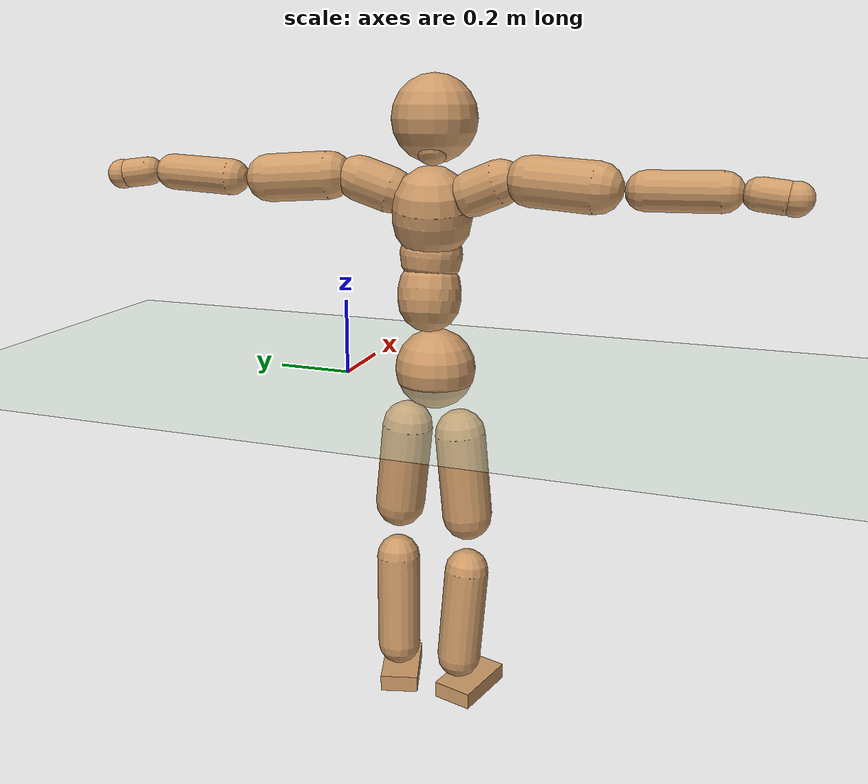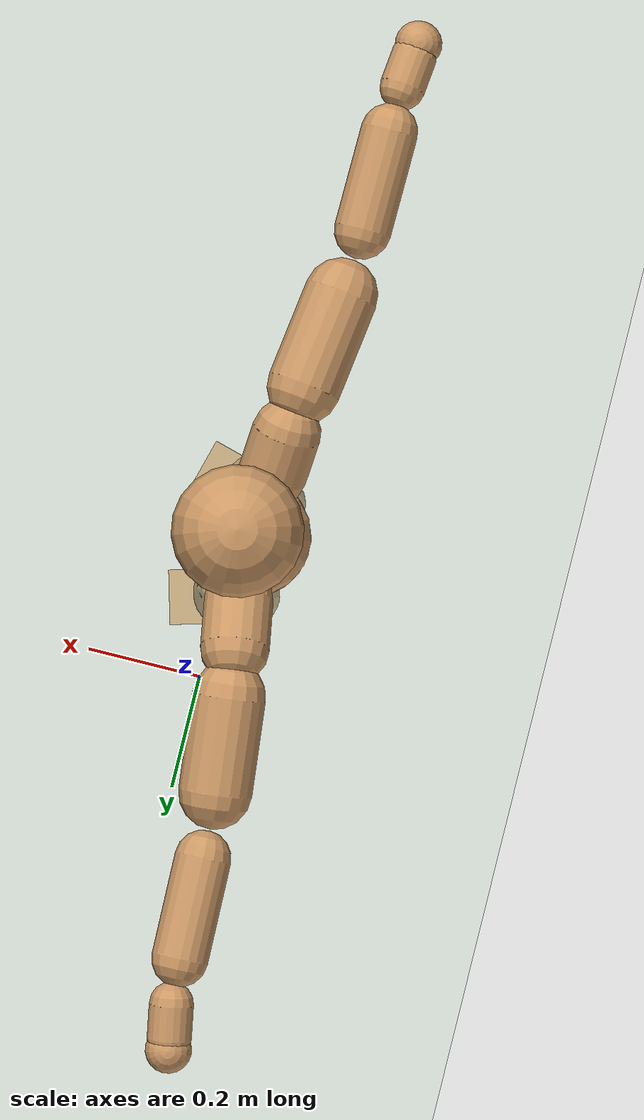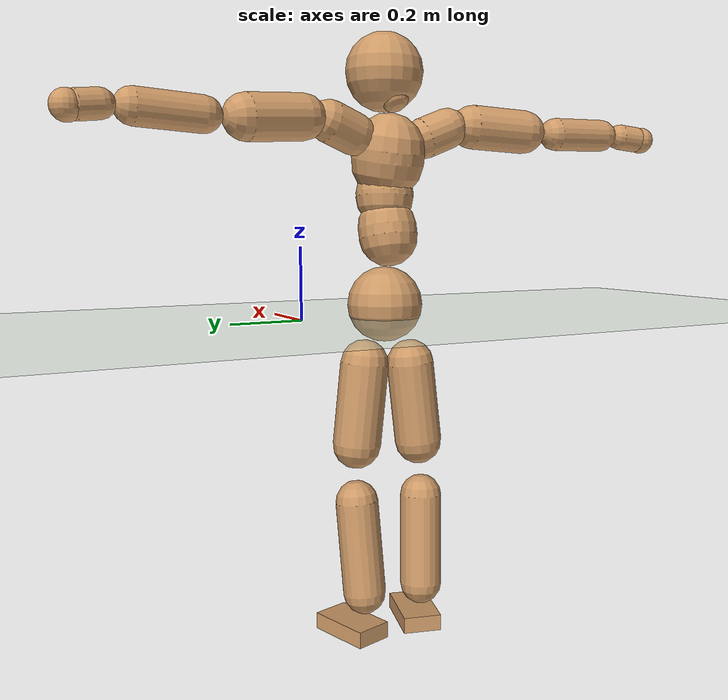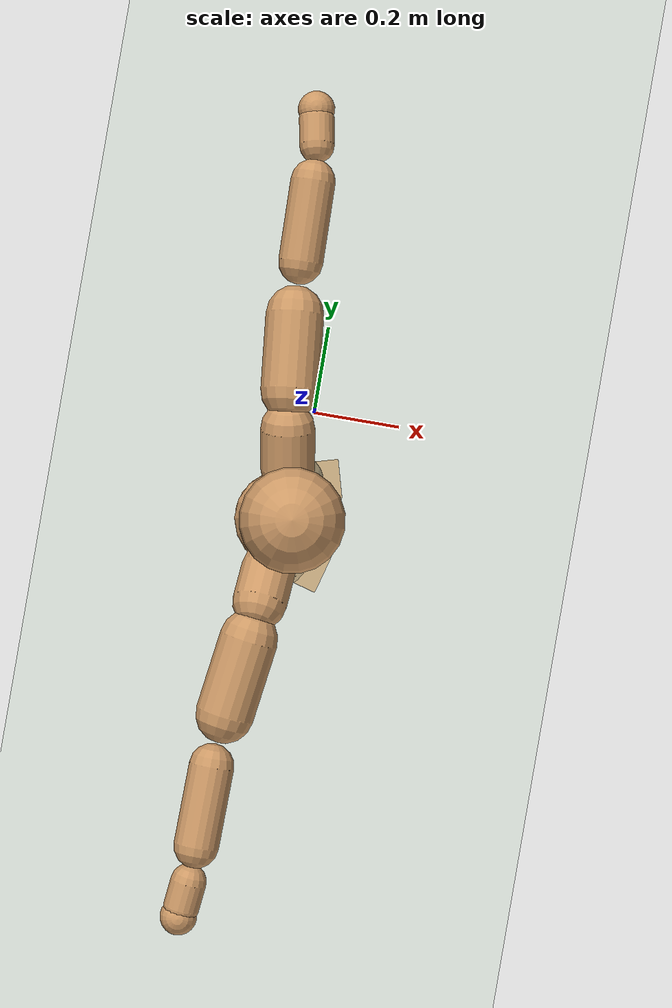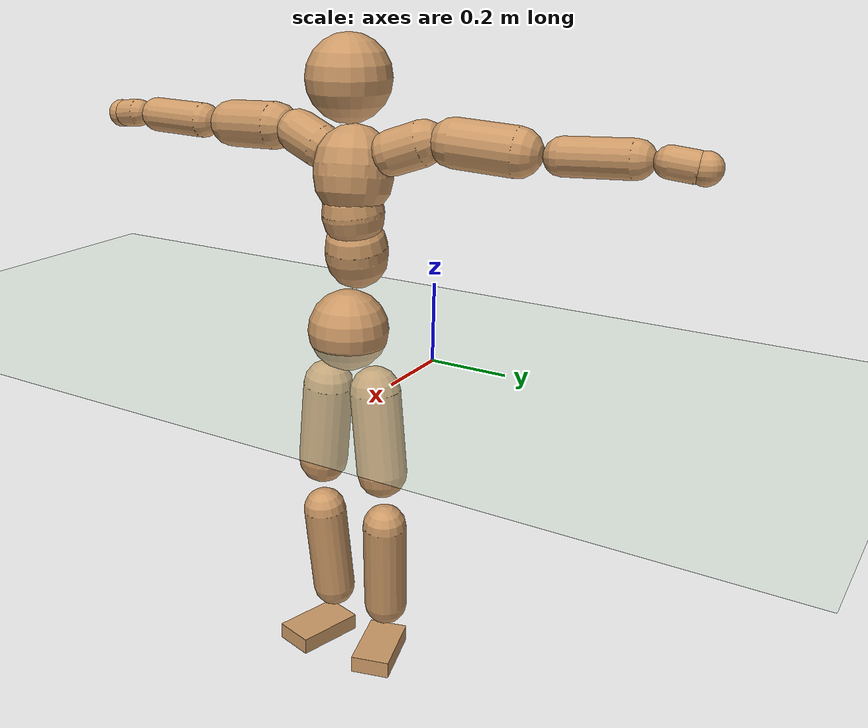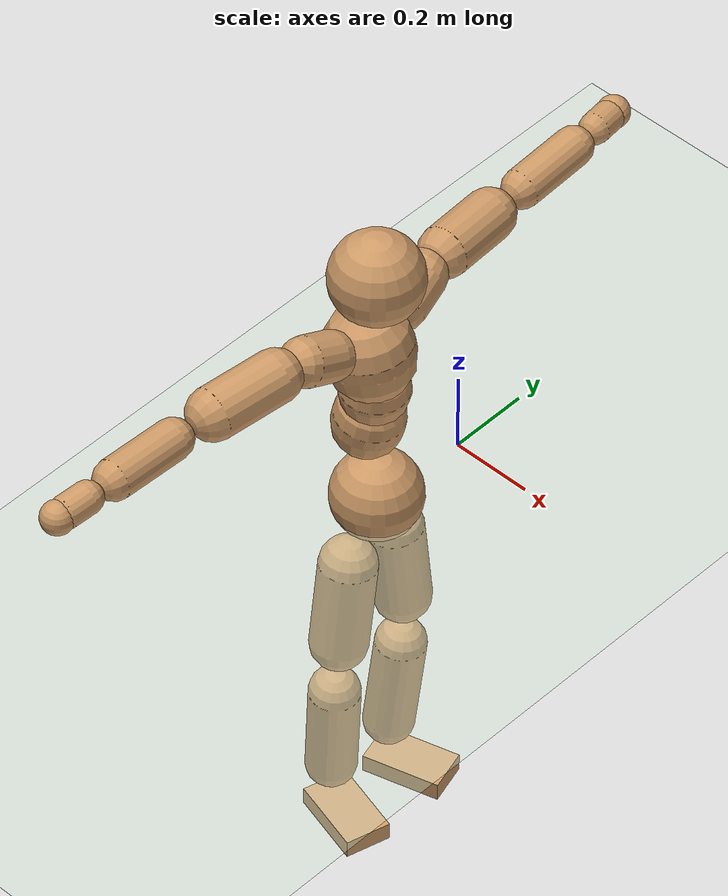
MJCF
<mujoco model="humanoid">
  <compiler coordinate="local"/>
  <default>
    <joint damping="0.0" armature="0.01" stiffness="0.0" limited="true"/>
    <geom conaffinity="1" condim="3" contype="7" margin="0.001" rgba="0.8 0.6 .4 1"/>
  </default>
  <asset>
    <texture type="skybox" builtin="gradient" rgb1=".4 .5 .6" rgb2="0 0 0" width="100" height="100"/>
    <texture builtin="flat" height="1278" mark="cross" markrgb="1 1 1" name="texgeom" random="0.01" rgb1="0.8 0.6 0.4" rgb2="0.8 0.6 0.4" type="cube" width="127"/>
    <texture builtin="checker" height="100" name="texplane" rgb1="0 0 0" rgb2="0.8 0.8 0.8" type="2d" width="100"/>
    <material name="MatPlane" reflectance="0.5" shininess="1" specular="1" texrepeat="60 60" texture="texplane"/>
    <material name="geom" texture="texgeom" texuniform="true"/>
  </asset>
  <worldbody>
    <light cutoff="100" diffuse="1 1 1" dir="-0 0 -1.3" directional="true" exponent="1" pos="0 0 1.3" specular=".1 .1 .1"/>
    <geom conaffinity="1" condim="3" name="floor" pos="0 0 0" rgba="0.8 0.9 0.8 1" size="100 100 .2" type="plane" material="MatPlane"/>
    <body name="Pelvis" pos="-0.0021 -0.2551 0.0353">
      <freejoint name="Pelvis"/>
      <geom type="sphere" contype="1" conaffinity="1" density="500" size="0.1067" pos="0.0000 0.0000 0.0000" name="Pelvis"/>
      <body name="L_Hip" pos="-0.0168 0.0651 -0.087">
        <joint name="L_Hip_x" type="hinge" pos="0 0 0" axis="1 0 0" stiffness="800" damping="80" armature="0.02" range="-180.0000 180.0000"/>
        <joint name="L_Hip_y" type="hinge" pos="0 0 0" axis="0 1 0" stiffness="800" damping="80" armature="0.02" range="-180.0000 180.0000"/>
        <joint name="L_Hip_z" type="hinge" pos="0 0 0" axis="0 0 1" stiffness="800" damping="80" armature="0.02" range="-180.0000 180.0000"/>
        <geom type="capsule" contype="1" conaffinity="1" density="500" fromto="0.0010 0.0081 -0.0768 0.0041 0.0323 -0.3074" size="0.0681" name="L_Hip"/>
        <body name="L_Knee" pos="0.0052 0.0404 -0.3842">
          <joint name="L_Knee_x" type="hinge" pos="0 0 0" axis="1 0 0" stiffness="800" damping="80" armature="0.02" range="-180.0000 180.0000"/>
          <joint name="L_Knee_y" type="hinge" pos="0 0 0" axis="0 1 0" stiffness="800" damping="80" armature="0.02" range="-180.0000 180.0000"/>
          <joint name="L_Knee_z" type="hinge" pos="0 0 0" axis="0 0 1" stiffness="800" damping="80" armature="0.02" range="-180.0000 180.0000"/>
          <geom type="capsule" contype="1" conaffinity="1" density="500" fromto="-0.0083 -0.0035 -0.0877 -0.0334 -0.0141 -0.3509" size="0.0604" name="L_Knee"/>
          <body name="L_Ankle" pos="-0.0417 -0.0176 -0.4386">
            <joint name="L_Ankle_x" type="hinge" pos="0 0 0" axis="1 0 0" stiffness="800" damping="80" armature="0.02" range="-180.0000 180.0000"/>
            <joint name="L_Ankle_y" type="hinge" pos="0 0 0" axis="0 1 0" stiffness="800" damping="80" armature="0.02" range="-180.0000 180.0000"/>
            <joint name="L_Ankle_z" type="hinge" pos="0 0 0" axis="0 0 1" stiffness="800" damping="80" armature="0.02" range="-180.0000 180.0000"/>
            <geom type="box" contype="1" conaffinity="1" density="500" pos="0.0646 0.0179 -0.0309" size="0.0958 0.0531 0.0235" quat="0.9909 0.0000 0.0000 0.1348" name="L_Ankle"/>
            <body name="L_Toe" pos="0.1292 0.0358 -0.0618">
              <joint name="L_Toe_x" type="hinge" pos="0 0 0" axis="1 0 0" stiffness="500" damping="50" armature="0.02" range="-180.0000 180.0000"/>
              <joint name="L_Toe_y" type="hinge" pos="0 0 0" axis="0 1 0" stiffness="500" damping="50" armature="0.02" range="-180.0000 180.0000"/>
              <joint name="L_Toe_z" type="hinge" pos="0 0 0" axis="0 0 1" stiffness="500" damping="50" armature="0.02" range="-180.0000 180.0000"/>
              <geom type="box" contype="1" conaffinity="1" density="500" pos="0.0000 0.0000 0.0295" size="0.0011 0.0026 0.0011" quat="0.9902 0.0000 0.0000 0.1398" name="L_Toe"/>
            </body>
          </body>
        </body>
      </body>
      <body name="R_Hip" pos="-0.0119 -0.0671 -0.0954">
        <joint name="R_Hip_x" type="hinge" pos="0 0 0" axis="1 0 0" stiffness="800" damping="80" armature="0.02" range="-180.0000 180.0000"/>
        <joint name="R_Hip_y" type="hinge" pos="0 0 0" axis="0 1 0" stiffness="800" damping="80" armature="0.02" range="-180.0000 180.0000"/>
        <joint name="R_Hip_z" type="hinge" pos="0 0 0" axis="0 0 1" stiffness="800" damping="80" armature="0.02" range="-180.0000 180.0000"/>
        <geom type="capsule" contype="1" conaffinity="1" density="500" fromto="-0.0016 -0.0082 -0.0770 -0.0065 -0.0327 -0.3078" size="0.0677" name="R_Hip"/>
        <body name="R_Knee" pos="-0.0081 -0.0409 -0.3848">
          <joint name="R_Knee_x" type="hinge" pos="0 0 0" axis="1 0 0" stiffness="800" damping="80" armature="0.02" range="-180.0000 180.0000"/>
          <joint name="R_Knee_y" type="hinge" pos="0 0 0" axis="0 1 0" stiffness="800" damping="80" armature="0.02" range="-180.0000 180.0000"/>
          <joint name="R_Knee_z" type="hinge" pos="0 0 0" axis="0 0 1" stiffness="800" damping="80" armature="0.02" range="-180.0000 180.0000"/>
          <geom type="capsule" contype="1" conaffinity="1" density="500" fromto="-0.0077 0.0043 -0.0863 -0.0309 0.0170 -0.3453" size="0.0602" name="R_Knee"/>
          <body name="R_Ankle" pos="-0.0386 0.0213 -0.4316">
            <joint name="R_Ankle_x" type="hinge" pos="0 0 0" axis="1 0 0" stiffness="800" damping="80" armature="0.02" range="-180.0000 180.0000"/>
            <joint name="R_Ankle_y" type="hinge" pos="0 0 0" axis="0 1 0" stiffness="800" damping="80" armature="0.02" range="-180.0000 180.0000"/>
            <joint name="R_Ankle_z" type="hinge" pos="0 0 0" axis="0 0 1" stiffness="800" damping="80" armature="0.02" range="-180.0000 180.0000"/>
            <geom type="box" contype="1" conaffinity="1" density="500" pos="0.0691 -0.0191 -0.0312" size="0.0957 0.0556 0.023" quat="0.9910 0.0000 0.0000 -0.1342" name="R_Ankle"/>
            <body name="R_Toe" pos="0.1382 -0.0381 -0.0624">
              <joint name="R_Toe_x" type="hinge" pos="0 0 0" axis="1 0 0" stiffness="500" damping="50" armature="0.02" range="-180.0000 180.0000"/>
              <joint name="R_Toe_y" type="hinge" pos="0 0 0" axis="0 1 0" stiffness="500" damping="50" armature="0.02" range="-180.0000 180.0000"/>
              <joint name="R_Toe_z" type="hinge" pos="0 0 0" axis="0 0 1" stiffness="500" damping="50" armature="0.02" range="-180.0000 180.0000"/>
              <geom type="box" contype="1" conaffinity="1" density="500" pos="0.0000 0.0000 0.0316" size="0.0012 0.0027 0.0012" quat="0.9921 0.0000 0.0000 -0.1258" name="R_Toe"/>
            </body>
          </body>
        </body>
      </body>
      <body name="Torso" pos="-0.0445 0.0045 0.1325">
        <joint name="Torso_x" type="hinge" pos="0 0 0" axis="1 0 0" stiffness="1000" damping="100" armature="0.02" range="-180.0000 180.0000"/>
        <joint name="Torso_y" type="hinge" pos="0 0 0" axis="0 1 0" stiffness="1000" damping="100" armature="0.02" range="-180.0000 180.0000"/>
        <joint name="Torso_z" type="hinge" pos="0 0 0" axis="0 0 1" stiffness="1000" damping="100" armature="0.02" range="-180.0000 180.0000"/>
        <geom type="capsule" contype="1" conaffinity="1" density="500" fromto="0.0165 0.0027 0.0860 0.0110 0.0018 0.0573" size="0.081747" name="Torso"/>
        <body name="Spine" pos="0.0275 0.0045 0.1434">
          <joint name="Spine_x" type="hinge" pos="0 0 0" axis="1 0 0" stiffness="1000" damping="100" armature="0.02" range="-180.0000 180.0000"/>
          <joint name="Spine_y" type="hinge" pos="0 0 0" axis="0 1 0" stiffness="1000" damping="100" armature="0.02" range="-180.0000 180.0000"/>
          <joint name="Spine_z" type="hinge" pos="0 0 0" axis="0 0 1" stiffness="1000" damping="100" armature="0.02" range="-180.0000 180.0000"/>
          <geom type="capsule" contype="1" conaffinity="1" density="500" fromto="0.0035 -0.0017 0.0354 0.0023 -0.0011 0.0236" size="0.080352" name="Spine"/>
          <body name="Chest" pos="0.0058 -0.0028 0.0589">
            <joint name="Chest_x" type="hinge" pos="0 0 0" axis="1 0 0" stiffness="1000" damping="100" armature="0.02" range="-180.0000 180.0000"/>
            <joint name="Chest_y" type="hinge" pos="0 0 0" axis="0 1 0" stiffness="1000" damping="100" armature="0.02" range="-180.0000 180.0000"/>
            <joint name="Chest_z" type="hinge" pos="0 0 0" axis="0 0 1" stiffness="1000" damping="100" armature="0.02" range="-180.0000 180.0000"/>
            <geom type="capsule" contype="1" conaffinity="1" density="500" fromto="-0.0166 -0.0046 0.0921 -0.0111 -0.0031 0.0614" size="0.101835" name="Chest"/>
            <body name="Neck" pos="-0.0412 -0.0134 0.221">
              <joint name="Neck_x" type="hinge" pos="0 0 0" axis="1 0 0" stiffness="500" damping="50" armature="0.02" range="-180.0000 180.0000"/>
              <joint name="Neck_y" type="hinge" pos="0 0 0" axis="0 1 0" stiffness="500" damping="50" armature="0.02" range="-180.0000 180.0000"/>
              <joint name="Neck_z" type="hinge" pos="0 0 0" axis="0 0 1" stiffness="500" damping="50" armature="0.02" range="-180.0000 180.0000"/>
              <geom type="capsule" contype="1" conaffinity="1" density="500" fromto="0.0094 0.0020 0.0167 0.0375 0.0080 0.0667" size="0.044175" name="Neck"/>
              <body name="Head" pos="0.0468 0.01 0.0833">
                <joint name="Head_x" type="hinge" pos="0 0 0" axis="1 0 0" stiffness="500" damping="50" armature="0.02" range="-180.0000 180.0000"/>
                <joint name="Head_y" type="hinge" pos="0 0 0" axis="0 1 0" stiffness="500" damping="50" armature="0.02" range="-180.0000 180.0000"/>
                <joint name="Head_z" type="hinge" pos="0 0 0" axis="0 0 1" stiffness="500" damping="50" armature="0.02" range="-180.0000 180.0000"/>
                <geom type="sphere" contype="1" conaffinity="1" density="500" size="0.1081" pos="0.0000 0.0000 0.0000" name="Head"/>
              </body>
            </body>
            <body name="L_Thorax" pos="-0.0181 0.077 0.121">
              <joint name="L_Thorax_x" type="hinge" pos="0 0 0" axis="1 0 0" stiffness="500" damping="50" armature="0.02" range="-180.0000 180.0000"/>
              <joint name="L_Thorax_y" type="hinge" pos="0 0 0" axis="0 1 0" stiffness="500" damping="50" armature="0.02" range="-180.0000 180.0000"/>
              <joint name="L_Thorax_z" type="hinge" pos="0 0 0" axis="0 0 1" stiffness="500" damping="50" armature="0.02" range="-180.0000 180.0000"/>
              <geom type="capsule" contype="1" conaffinity="1" density="500" fromto="-0.0043 0.0263 0.0094 -0.0174 0.1054 0.0377" size="0.0576" name="L_Thorax"/>
              <body name="L_Shoulder" pos="-0.0217 0.1317 0.0471">
                <joint name="L_Shoulder_x" type="hinge" pos="0 0 0" axis="1 0 0" stiffness="500" damping="50" armature="0.02" range="-720.0000 720.0000"/>
                <joint name="L_Shoulder_y" type="hinge" pos="0 0 0" axis="0 1 0" stiffness="500" damping="50" armature="0.02" range="-720.0000 720.0000"/>
                <joint name="L_Shoulder_z" type="hinge" pos="0 0 0" axis="0 0 1" stiffness="500" damping="50" armature="0.02" range="-720.0000 720.0000"/>
                <geom type="capsule" contype="1" conaffinity="1" density="500" fromto="-0.0055 0.0530 -0.0034 -0.0219 0.2118 -0.0135" size="0.061" name="L_Shoulder"/>
                <body name="L_Elbow" pos="-0.0273 0.2648 -0.0169">
                  <joint name="L_Elbow_x" type="hinge" pos="0 0 0" axis="1 0 0" stiffness="500" damping="50" armature="0.02" range="-720.0000 720.0000"/>
                  <joint name="L_Elbow_y" type="hinge" pos="0 0 0" axis="0 1 0" stiffness="500" damping="50" armature="0.02" range="-720.0000 720.0000"/>
                  <joint name="L_Elbow_z" type="hinge" pos="0 0 0" axis="0 0 1" stiffness="500" damping="50" armature="0.02" range="-720.0000 720.0000"/>
                  <geom type="capsule" contype="1" conaffinity="1" density="500" fromto="-0.0010 0.0564 0.0030 -0.0041 0.2257 0.0119" size="0.0466" name="L_Elbow"/>
                  <body name="L_Wrist" pos="-0.0052 0.2821 0.0148">
                    <joint name="L_Wrist_x" type="hinge" pos="0 0 0" axis="1 0 0" stiffness="300" damping="30" armature="0.02" range="-180.0000 180.0000"/>
                    <joint name="L_Wrist_y" type="hinge" pos="0 0 0" axis="0 1 0" stiffness="300" damping="30" armature="0.02" range="-180.0000 180.0000"/>
                    <joint name="L_Wrist_z" type="hinge" pos="0 0 0" axis="0 0 1" stiffness="300" damping="30" armature="0.02" range="-180.0000 180.0000"/>
                    <geom type="capsule" contype="1" conaffinity="1" density="500" fromto="-0.0034 0.0188 -0.0023 -0.0136 0.0751 -0.0092" size="0.037" name="L_Wrist"/>
                    <body name="L_Hand" pos="-0.017 0.0939 -0.0115">
                      <joint name="L_Hand_x" type="hinge" pos="0 0 0" axis="1 0 0" stiffness="300" damping="30" armature="0.02" range="-180.0000 180.0000"/>
                      <joint name="L_Hand_y" type="hinge" pos="0 0 0" axis="0 1 0" stiffness="300" damping="30" armature="0.02" range="-180.0000 180.0000"/>
                      <joint name="L_Hand_z" type="hinge" pos="0 0 0" axis="0 0 1" stiffness="300" damping="30" armature="0.02" range="-180.0000 180.0000"/>
                      <geom type="sphere" contype="1" conaffinity="1" density="500" size="0.0385" pos="0.0000 0.0000 0.0000" name="L_Hand"/>
                    </body>
                  </body>
                </body>
              </body>
            </body>
            <body name="R_Thorax" pos="-0.024 -0.0867 0.1185">
              <joint name="R_Thorax_x" type="hinge" pos="0 0 0" axis="1 0 0" stiffness="500" damping="50" armature="0.02" range="-180.0000 180.0000"/>
              <joint name="R_Thorax_y" type="hinge" pos="0 0 0" axis="0 1 0" stiffness="500" damping="50" armature="0.02" range="-180.0000 180.0000"/>
              <joint name="R_Thorax_z" type="hinge" pos="0 0 0" axis="0 0 1" stiffness="500" damping="50" armature="0.02" range="-180.0000 180.0000"/>
              <geom type="capsule" contype="1" conaffinity="1" density="500" fromto="-0.0020 -0.0242 0.0099 -0.0081 -0.0968 0.0395" size="0.0572" name="R_Thorax"/>
              <body name="R_Shoulder" pos="-0.0101 -0.121 0.0494">
                <joint name="R_Shoulder_x" type="hinge" pos="0 0 0" axis="1 0 0" stiffness="500" damping="50" armature="0.02" range="-720.0000 720.0000"/>
                <joint name="R_Shoulder_y" type="hinge" pos="0 0 0" axis="0 1 0" stiffness="500" damping="50" armature="0.02" range="-720.0000 720.0000"/>
                <joint name="R_Shoulder_z" type="hinge" pos="0 0 0" axis="0 0 1" stiffness="500" damping="50" armature="0.02" range="-720.0000 720.0000"/>
                <geom type="capsule" contype="1" conaffinity="1" density="500" fromto="-0.0076 -0.0544 -0.0028 -0.0305 -0.2175 -0.0113" size="0.0616" name="R_Shoulder"/>
                <body name="R_Elbow" pos="-0.0381 -0.2719 -0.0141">
                  <joint name="R_Elbow_x" type="hinge" pos="0 0 0" axis="1 0 0" stiffness="500" damping="50" armature="0.02" range="-720.0000 720.0000"/>
                  <joint name="R_Elbow_y" type="hinge" pos="0 0 0" axis="0 1 0" stiffness="500" damping="50" armature="0.02" range="-720.0000 720.0000"/>
                  <joint name="R_Elbow_z" type="hinge" pos="0 0 0" axis="0 0 1" stiffness="500" damping="50" armature="0.02" range="-720.0000 720.0000"/>
                  <geom type="capsule" contype="1" conaffinity="1" density="500" fromto="-0.0011 -0.0566 0.0010 -0.0044 -0.2262 0.0041" size="0.0471" name="R_Elbow"/>
                  <body name="R_Wrist" pos="-0.0055 -0.2828 0.0051">
                    <joint name="R_Wrist_x" type="hinge" pos="0 0 0" axis="1 0 0" stiffness="300" damping="30" armature="0.02" range="-180.0000 180.0000"/>
                    <joint name="R_Wrist_y" type="hinge" pos="0 0 0" axis="0 1 0" stiffness="300" damping="30" armature="0.02" range="-180.0000 180.0000"/>
                    <joint name="R_Wrist_z" type="hinge" pos="0 0 0" axis="0 0 1" stiffness="300" damping="30" armature="0.02" range="-180.0000 180.0000"/>
                    <geom type="capsule" contype="1" conaffinity="1" density="500" fromto="-0.0022 -0.0192 -0.0019 -0.0086 -0.0768 -0.0076" size="0.0378" name="R_Wrist"/>
                    <body name="R_Hand" pos="-0.0108 -0.096 -0.0095">
                      <joint name="R_Hand_x" type="hinge" pos="0 0 0" axis="1 0 0" stiffness="300" damping="30" armature="0.02" range="-180.0000 180.0000"/>
                      <joint name="R_Hand_y" type="hinge" pos="0 0 0" axis="0 1 0" stiffness="300" damping="30" armature="0.02" range="-180.0000 180.0000"/>
                      <joint name="R_Hand_z" type="hinge" pos="0 0 0" axis="0 0 1" stiffness="300" damping="30" armature="0.02" range="-180.0000 180.0000"/>
                      <geom type="sphere" contype="1" conaffinity="1" density="500" size="0.0390" pos="0.0000 0.0000 0.0000" name="R_Hand"/>
                    </body>
                  </body>
                </body>
              </body>
            </body>
          </body>
        </body>
      </body>
    </body>
  </worldbody>
  <actuator>
    <motor name="L_Hip_x" joint="L_Hip_x" gear="500"/>
    <motor name="L_Hip_y" joint="L_Hip_y" gear="500"/>
    <motor name="L_Hip_z" joint="L_Hip_z" gear="500"/>
    <motor name="L_Knee_x" joint="L_Knee_x" gear="500"/>
    <motor name="L_Knee_y" joint="L_Knee_y" gear="500"/>
    <motor name="L_Knee_z" joint="L_Knee_z" gear="500"/>
    <motor name="L_Ankle_x" joint="L_Ankle_x" gear="500"/>
    <motor name="L_Ankle_y" joint="L_Ankle_y" gear="500"/>
    <motor name="L_Ankle_z" joint="L_Ankle_z" gear="500"/>
    <motor name="L_Toe_x" joint="L_Toe_x" gear="500"/>
    <motor name="L_Toe_y" joint="L_Toe_y" gear="500"/>
    <motor name="L_Toe_z" joint="L_Toe_z" gear="500"/>
    <motor name="R_Hip_x" joint="R_Hip_x" gear="500"/>
    <motor name="R_Hip_y" joint="R_Hip_y" gear="500"/>
    <motor name="R_Hip_z" joint="R_Hip_z" gear="500"/>
    <motor name="R_Knee_x" joint="R_Knee_x" gear="500"/>
    <motor name="R_Knee_y" joint="R_Knee_y" gear="500"/>
    <motor name="R_Knee_z" joint="R_Knee_z" gear="500"/>
    <motor name="R_Ankle_x" joint="R_Ankle_x" gear="500"/>
    <motor name="R_Ankle_y" joint="R_Ankle_y" gear="500"/>
    <motor name="R_Ankle_z" joint="R_Ankle_z" gear="500"/>
    <motor name="R_Toe_x" joint="R_Toe_x" gear="500"/>
    <motor name="R_Toe_y" joint="R_Toe_y" gear="500"/>
    <motor name="R_Toe_z" joint="R_Toe_z" gear="500"/>
    <motor name="Torso_x" joint="Torso_x" gear="500"/>
    <motor name="Torso_y" joint="Torso_y" gear="500"/>
    <motor name="Torso_z" joint="Torso_z" gear="500"/>
    <motor name="Spine_x" joint="Spine_x" gear="500"/>
    <motor name="Spine_y" joint="Spine_y" gear="500"/>
    <motor name="Spine_z" joint="Spine_z" gear="500"/>
    <motor name="Chest_x" joint="Chest_x" gear="500"/>
    <motor name="Chest_y" joint="Chest_y" gear="500"/>
    <motor name="Chest_z" joint="Chest_z" gear="500"/>
    <motor name="Neck_x" joint="Neck_x" gear="500"/>
    <motor name="Neck_y" joint="Neck_y" gear="500"/>
    <motor name="Neck_z" joint="Neck_z" gear="500"/>
    <motor name="Head_x" joint="Head_x" gear="500"/>
    <motor name="Head_y" joint="Head_y" gear="500"/>
    <motor name="Head_z" joint="Head_z" gear="500"/>
    <motor name="L_Thorax_x" joint="L_Thorax_x" gear="500"/>
    <motor name="L_Thorax_y" joint="L_Thorax_y" gear="500"/>
    <motor name="L_Thorax_z" joint="L_Thorax_z" gear="500"/>
    <motor name="L_Shoulder_x" joint="L_Shoulder_x" gear="500"/>
    <motor name="L_Shoulder_y" joint="L_Shoulder_y" gear="500"/>
    <motor name="L_Shoulder_z" joint="L_Shoulder_z" gear="500"/>
    <motor name="L_Elbow_x" joint="L_Elbow_x" gear="500"/>
    <motor name="L_Elbow_y" joint="L_Elbow_y" gear="500"/>
    <motor name="L_Elbow_z" joint="L_Elbow_z" gear="500"/>
    <motor name="L_Wrist_x" joint="L_Wrist_x" gear="500"/>
    <motor name="L_Wrist_y" joint="L_Wrist_y" gear="500"/>
    <motor name="L_Wrist_z" joint="L_Wrist_z" gear="500"/>
    <motor name="L_Hand_x" joint="L_Hand_x" gear="500"/>
    <motor name="L_Hand_y" joint="L_Hand_y" gear="500"/>
    <motor name="L_Hand_z" joint="L_Hand_z" gear="500"/>
    <motor name="R_Thorax_x" joint="R_Thorax_x" gear="500"/>
    <motor name="R_Thorax_y" joint="R_Thorax_y" gear="500"/>
    <motor name="R_Thorax_z" joint="R_Thorax_z" gear="500"/>
    <motor name="R_Shoulder_x" joint="R_Shoulder_x" gear="500"/>
    <motor name="R_Shoulder_y" joint="R_Shoulder_y" gear="500"/>
    <motor name="R_Shoulder_z" joint="R_Shoulder_z" gear="500"/>
    <motor name="R_Elbow_x" joint="R_Elbow_x" gear="500"/>
    <motor name="R_Elbow_y" joint="R_Elbow_y" gear="500"/>
    <motor name="R_Elbow_z" joint="R_Elbow_z" gear="500"/>
    <motor name="R_Wrist_x" joint="R_Wrist_x" gear="500"/>
    <motor name="R_Wrist_y" joint="R_Wrist_y" gear="500"/>
    <motor name="R_Wrist_z" joint="R_Wrist_z" gear="500"/>
    <motor name="R_Hand_x" joint="R_Hand_x" gear="500"/>
    <motor name="R_Hand_y" joint="R_Hand_y" gear="500"/>
    <motor name="R_Hand_z" joint="R_Hand_z" gear="500"/>
  </actuator>
  <contact>
    <exclude body1="Torso" body2="Chest"/>
    <exclude body1="Head" body2="Chest"/>
    <exclude body1="R_Knee" body2="R_Toe"/>
    <exclude body1="R_Knee" body2="L_Ankle"/>
    <exclude body1="R_Knee" body2="L_Toe"/>
    <exclude body1="L_Knee" body2="L_Toe"/>
    <exclude body1="L_Knee" body2="R_Ankle"/>
    <exclude body1="L_Knee" body2="R_Toe"/>
    <exclude body1="L_Shoulder" body2="Chest"/>
    <exclude body1="R_Shoulder" body2="Chest"/>
  </contact>
  <sensor/>
  <size njmax="700" nconmax="700"/>
</mujoco>
